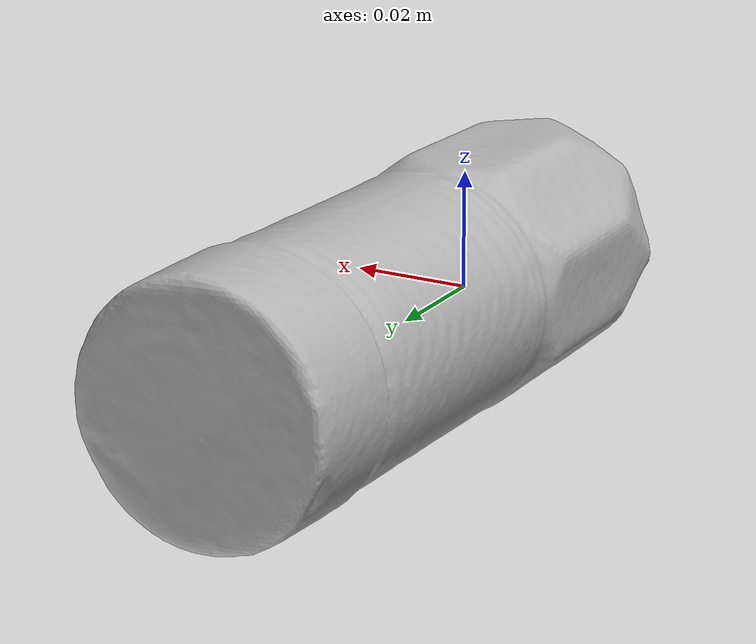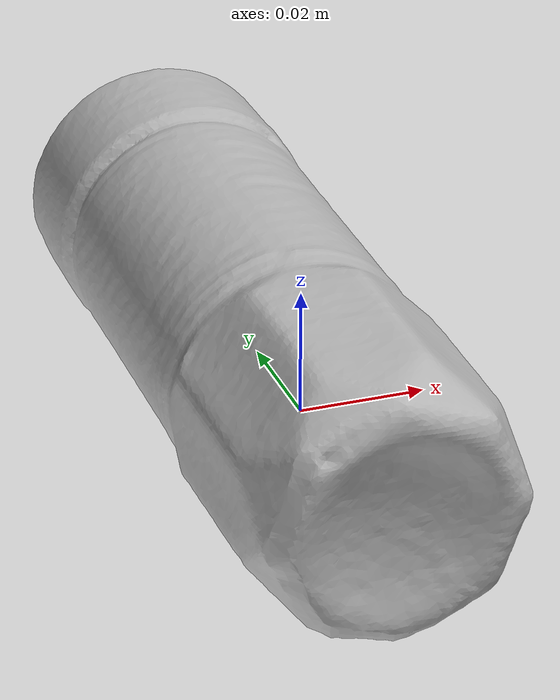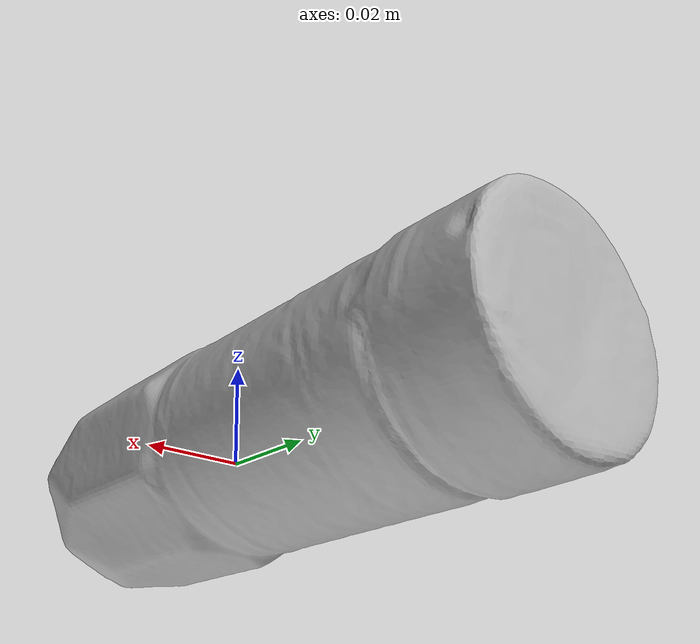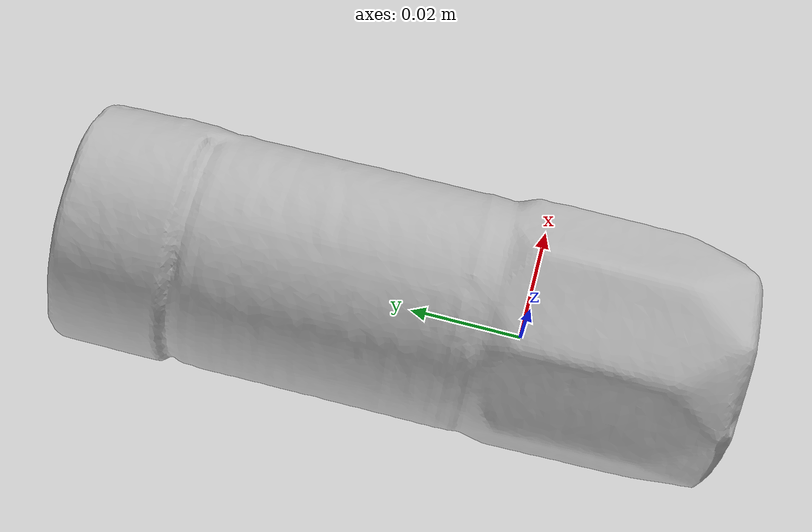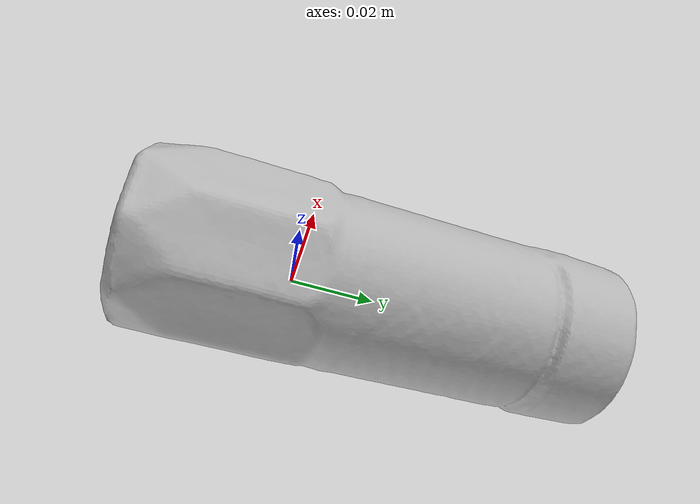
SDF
<?xml version='1.0'?>
<sdf version="1.4">
  <model name="Curry">
    <static>false</static>
    <link name="link">
      <inertial>
        <pose>0.0018841028584711916 0.02162104709252863 0.0015388006016354432 -1.7693969116491117 1.413431165655488 2.959351643297526</pose>
        <mass>0.017043964034583362</mass>
        <inertia>
          <ixx>2.1100693831460142e-05</ixx>
          <ixy>6.568487238129032e-23</ixy>
          <ixz>-3.672906063222173e-22</ixz>
          <iyy>2.108095490484973e-05</iyy>
          <iyz>-3.674920993934684e-23</iyz>
          <izz>3.941110645547175e-06</izz>
        </inertia>
      </inertial>
      <collision name="collision">
        <geometry>
          <mesh>
            <!-- Use a downsampled mesh for collisions -->
            <uri>model:///Curry/Curry_250_collision.obj</uri>
	        </mesh>
        </geometry>
        <surface>
      </surface>
      </collision>
      <visual name="visual">
        <geometry>
          <mesh>
            <uri>model:///Curry/Curry_25k_tex.obj</uri>
	        </mesh>
        </geometry>
        <material>
          <script>
            <uri>model:///Curry/Curry.material</uri>
            <name>Curry</name>
          </script>
        </material>
      </visual>
    </link>
  </model>
</sdf>
